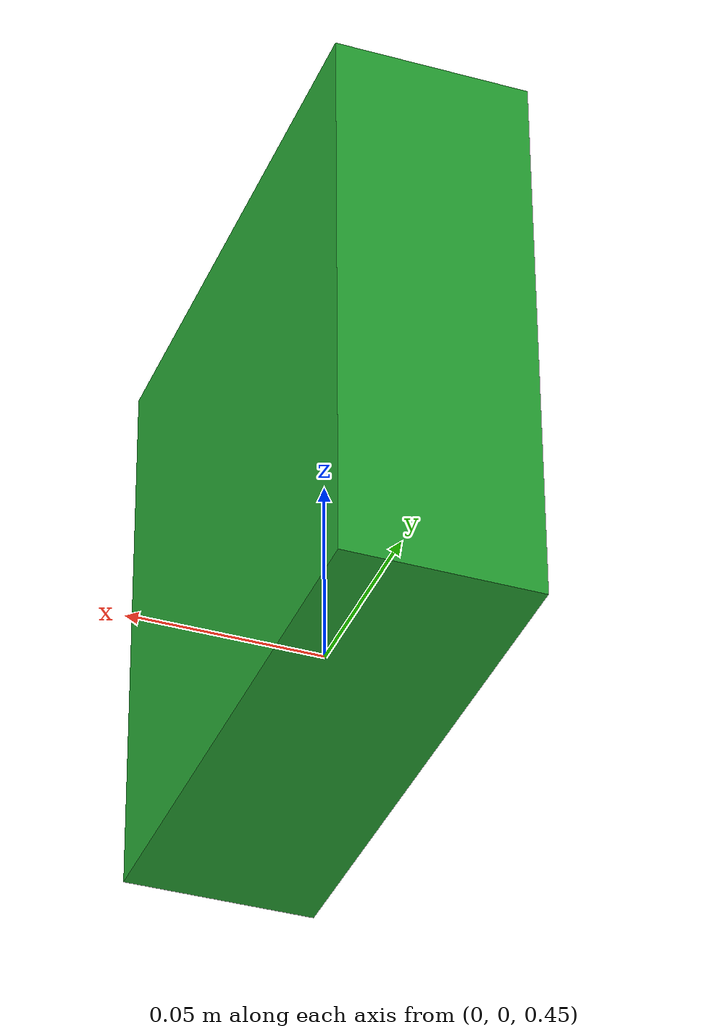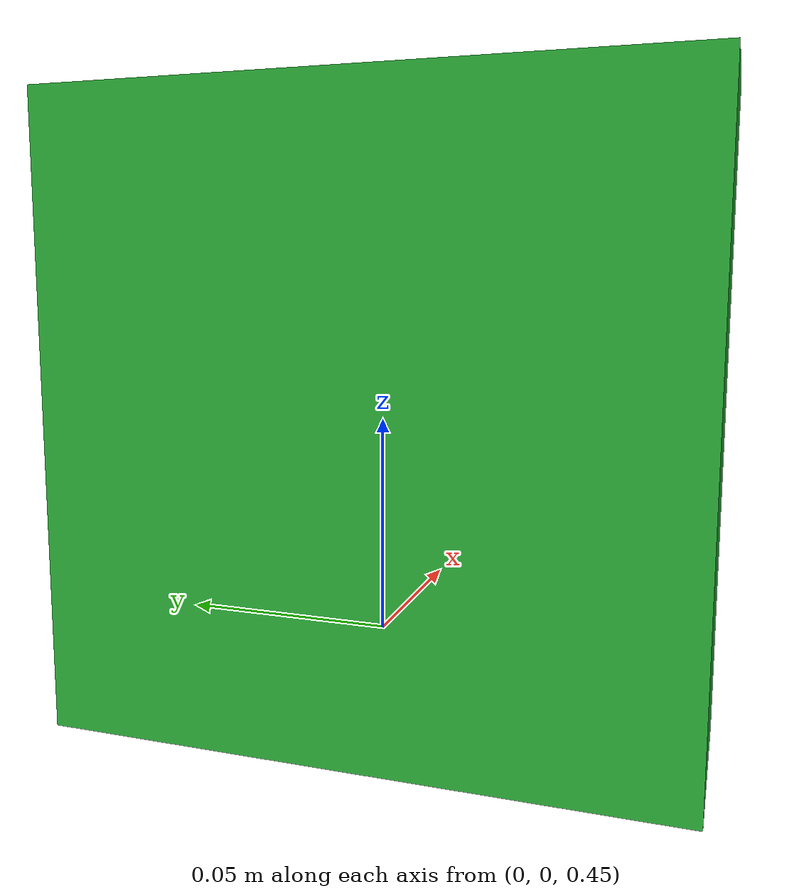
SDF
<?xml version='1.0'?>
<sdf version="1.4">
  <model name="book_model">
    <pose>0 0 0.5 0 0 0</pose>
    <static>true</static>
    <link name="link">
      <inertial>
        <mass>1.0</mass>
        <inertia>
          <ixx>0.01</ixx>
          <ixy>0.0</ixy>
          <ixz>0.0</ixz>
          <iyy>0.01</iyy>
          <iyz>0.0</iyz>
          <izz>0.01</izz>
        </inertia>
      </inertial>
      <collision name="collision">
        <geometry>
          <box>
            <size>0.05 0.15 0.15</size> <!-- Adjusted size for a book-like shape -->
          </box>
        </geometry>
      </collision>
      <visual name="visual">
        <geometry>
          <box>
            <size>0.05 0.15 0.15</size> <!-- Adjusted size for a book-like shape -->
          </box>
        </geometry>
        <material>
          <script>
            <uri>file://media/materials/scripts/gazebo.material</uri>
            <name>Gazebo/Green</name> <!-- You can adjust the color or use a texture -->
          </script>
        </material>
      </visual>
    </link>
  </model>
</sdf>
